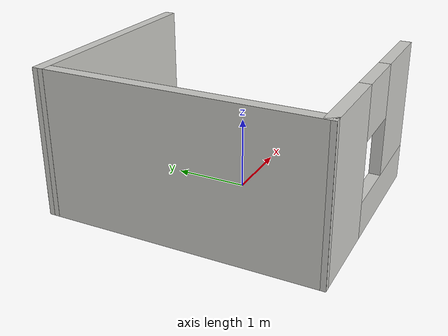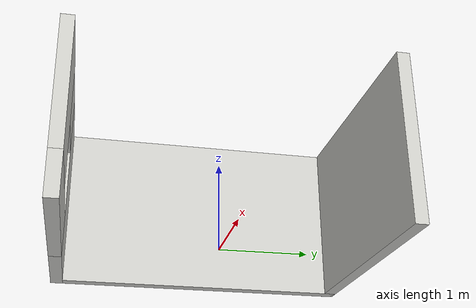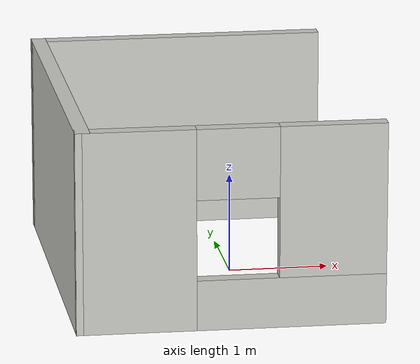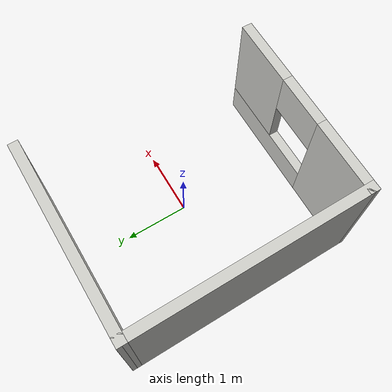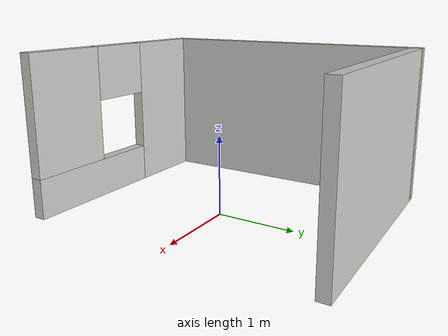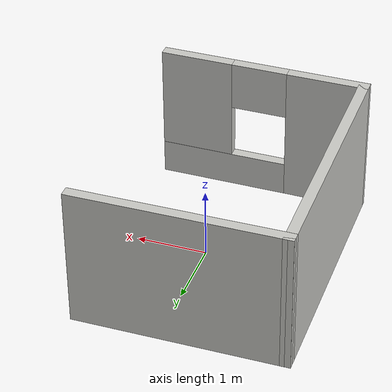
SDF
<?xml version='1.0'?>
<sdf version='1.7'>
  <model name='walls'>
    <pose>-0.275459 0.017856 0 0 -0 0</pose>
    <link name='Wall_10'>
      <collision name='Wall_10_Collision'>
        <geometry>
          <box>
            <size>3.74497 0.15 2</size>
          </box>
        </geometry>
        <pose>0 0 1 0 -0 0</pose>
      </collision>
      <visual name='Wall_10_Visual'>
        <pose>0 0 1 0 -0 0</pose>
        <geometry>
          <box>
            <size>3.74497 0.15 2</size>
          </box>
        </geometry>
        <material>
          <script>
            <uri>file://media/materials/scripts/gazebo.material</uri>
            <name>Gazebo/CeilingTiled</name>
          </script>
          <ambient>1 1 1 1</ambient>
        </material>
        <meta>
          <layer>0</layer>
        </meta>
      </visual>
      <pose>-1.42504 0.017644 0 0 -0 -1.56106</pose>
    </link>
    <link name='Wall_12'>
      <pose>0.017459 -1.79736 0 0 -0 -0.01228</pose>
      <visual name='Wall_12_Visual_0'>
        <pose>-0.919239 0 1 0 -0 0</pose>
        <geometry>
          <box>
            <size>1.16152 0.15 2</size>
          </box>
        </geometry>
        <material>
          <script>
            <uri>file://media/materials/scripts/gazebo.material</uri>
            <name>Gazebo/CeilingTiled</name>
          </script>
          <ambient>1 1 1 1</ambient>
        </material>
        <meta>
          <layer>0</layer>
        </meta>
      </visual>
      <collision name='Wall_12_Collision_0'>
        <geometry>
          <box>
            <size>1.16152 0.15 2</size>
          </box>
        </geometry>
        <pose>-0.919239 0 1 0 -0 0</pose>
      </collision>
      <visual name='Wall_12_Visual_1'>
        <pose>0.580761 0 0.25 0 -0 0</pose>
        <geometry>
          <box>
            <size>1.83848 0.15 0.5</size>
          </box>
        </geometry>
        <material>
          <script>
            <uri>file://media/materials/scripts/gazebo.material</uri>
            <name>Gazebo/CeilingTiled</name>
          </script>
          <ambient>1 1 1 1</ambient>
        </material>
        <meta>
          <layer>0</layer>
        </meta>
      </visual>
      <collision name='Wall_12_Collision_1'>
        <geometry>
          <box>
            <size>1.83848 0.15 0.5</size>
          </box>
        </geometry>
        <pose>0.580761 0 0.25 0 -0 0</pose>
      </collision>
      <visual name='Wall_12_Visual_2'>
        <pose>0.980761 0 1.25 0 -0 0</pose>
        <geometry>
          <box>
            <size>1.03848 0.15 1.5</size>
          </box>
        </geometry>
        <material>
          <script>
            <uri>file://media/materials/scripts/gazebo.material</uri>
            <name>Gazebo/CeilingTiled</name>
          </script>
          <ambient>1 1 1 1</ambient>
        </material>
        <meta>
          <layer>0</layer>
        </meta>
      </visual>
      <collision name='Wall_12_Collision_2'>
        <geometry>
          <box>
            <size>1.03848 0.15 1.5</size>
          </box>
        </geometry>
        <pose>0.980761 0 1.25 0 -0 0</pose>
      </collision>
      <visual name='Wall_12_Visual_3'>
        <pose>0.061522 0 1.65 0 -0 0</pose>
        <geometry>
          <box>
            <size>0.8 0.15 0.7</size>
          </box>
        </geometry>
        <material>
          <script>
            <uri>file://media/materials/scripts/gazebo.material</uri>
            <name>Gazebo/CeilingTiled</name>
          </script>
          <ambient>1 1 1 1</ambient>
        </material>
        <meta>
          <layer>0</layer>
        </meta>
      </visual>
      <collision name='Wall_12_Collision_3'>
        <geometry>
          <box>
            <size>0.8 0.15 0.7</size>
          </box>
        </geometry>
        <pose>0.061522 0 1.65 0 -0 0</pose>
      </collision>
    </link>
    <link name='Wall_5'>
      <collision name='Wall_5_Collision'>
        <geometry>
          <box>
            <size>3 0.15 2</size>
          </box>
        </geometry>
        <pose>0 0 1 0 -0 0</pose>
      </collision>
      <visual name='Wall_5_Visual'>
        <pose>0 0 1 0 -0 0</pose>
        <geometry>
          <box>
            <size>3 0.15 2</size>
          </box>
        </geometry>
        <material>
          <script>
            <uri>file://media/materials/scripts/gazebo.material</uri>
            <name>Gazebo/CeilingTiled</name>
          </script>
          <ambient>1 1 1 1</ambient>
        </material>
        <meta>
          <layer>0</layer>
        </meta>
      </visual>
      <pose>-0.017541 1.81514 0 0 -0 0</pose>
    </link>
    <static>1</static>
  </model>
</sdf>
